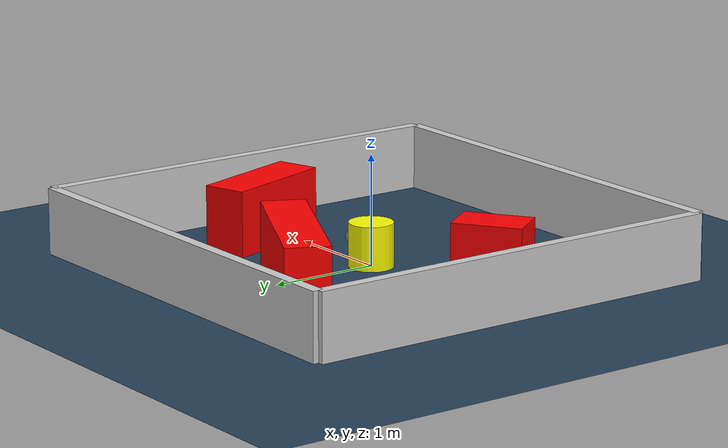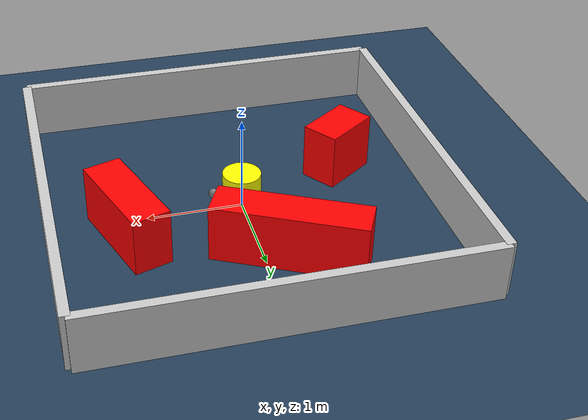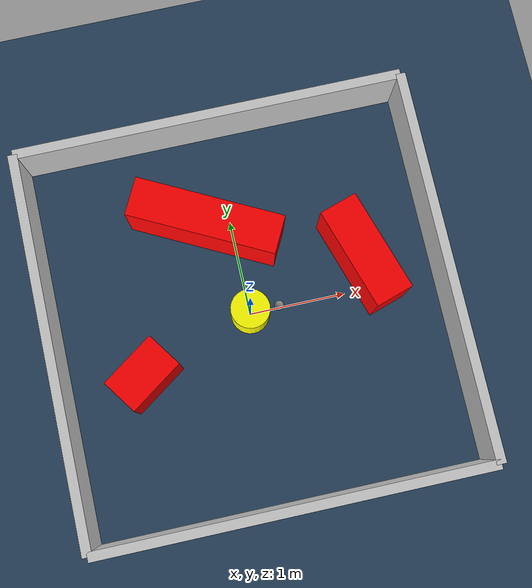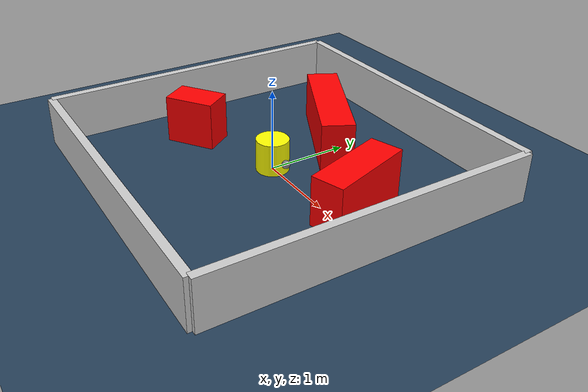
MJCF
<?xml version="1.0" ?>
<mujoco model="generated_environment">
  <option timestep="0.01" integrator="RK4" cone="elliptic"/>
  <default>
    <geom density="1"/>
  </default>
  <asset>
    <texture builtin="gradient" height="3072" rgb1="0.3 0.5 0.7" rgb2="0 0 0" type="skybox" width="512"/>
    <texture builtin="checker" height="300" mark="edge" markrgb="0.8 0.8 0.8" name="groundplane" rgb1="0.2 0.3 0.4" rgb2="0.1 0.2 0.3" type="2d" width="300"/>
    <material name="groundplane" reflectance="0.2" texrepeat="5 5" texture="groundplane" texuniform="true"/>
    <material name="robot" rgba="0.0 1.0 0.0 1"/>
  </asset>
  <worldbody>
    <light dir="0 0 -1" directional="true" pos="0 0 1.5"/>
    <geom condim="4" friction="1.0 0.005 0.001" material="groundplane" name="floor" size="0 0 0.05" type="plane"/>
    <body name="walls">
      <geom name="wall_1" condim="4" pos="-2.0 0.0 0.3" rgba="0.800000011920929 0.800000011920929 0.800000011920929 1.0" size="0.05 2.0 0.3" type="box"/>
      <geom name="wall_2" condim="4" pos="2.0 0.0 0.3" rgba="0.800000011920929 0.800000011920929 0.800000011920929 1.0" size="0.05 2.0 0.3" type="box"/>
      <geom name="wall_3" condim="4" pos="0.0 -2.0 0.3" rgba="0.800000011920929 0.800000011920929 0.800000011920929 1.0" size="2.0 0.05 0.3" type="box"/>
      <geom name="wall_4" condim="4" pos="0.0 2.0 0.3" rgba="0.800000011920929 0.800000011920929 0.800000011920929 1.0" size="2.0 0.05 0.3" type="box"/>
    </body>
    <body name="robot">
      <joint name="joint_x" type="slide" pos="0 0 0" axis="1 0 0"/>
      <joint name="joint_y" type="slide" pos="0 0 0" axis="0 1 0"/>
      <geom name="robot" type="sphere" pos="0.3 0.0 0.2" size="0.05" mass="5." friction="1.0 0.005 0.0001" condim="4" rgba="0.5 0.5 0.5 1.0"/>
      <site name="sensor_ball"/>
    </body>
    <body name="obstacle_movable_1">
      <geom name="obstacle_movable_1" condim="4" pos="0.0 0.0 0.2" euler="0 0 0.0" friction="1.0 0.005 0.001" rgba="1.0 1.0 0.0 1.0" size="0.2 0.2 0.0" type="cylinder" mass="0.1"/>
      <joint type="free"/>
    </body>
    <body name="obstacle_2_static">
      <geom name="obstacle_2_static" condim="4" pos="-1.1627083487041894 -0.42259512220809325 0.3" euler="0 0 214.80905901460048" friction="1.0 0.005 0.001" rgba="1 0 0 1" size="0.3145329410043177 0.2 0.3" type="box"/>
    </body>
    <body name="obstacle_3_static">
      <geom name="obstacle_3_static" condim="4" pos="1.233875780082522 0.30153606231594243 0.3" euler="0 0 107.83736843855034" friction="1.0 0.005 0.001" rgba="1 0 0 1" size="0.541326016469033 0.2 0.3" type="box"/>
    </body>
    <body name="obstacle_4_static">
      <geom name="obstacle_4_static" condim="4" pos="-0.2442285525551553 0.9802164443504544 0.3" euler="0 0 332.6728392272996" friction="1.0 0.005 0.001" rgba="1 0 0 1" size="0.7711883008297158 0.2 0.3" type="box"/>
    </body>
  </worldbody>
  <actuator>
    <motor name="actuator_x" joint="joint_x" gear="1" ctrlrange="-1 1"/>
    <motor name="actuator_y" joint="joint_y" gear="1" ctrlrange="-1 1"/>
  </actuator>
</mujoco>
